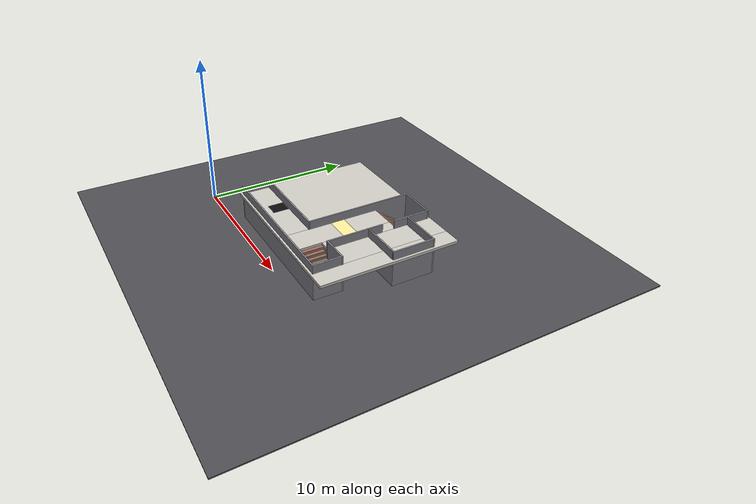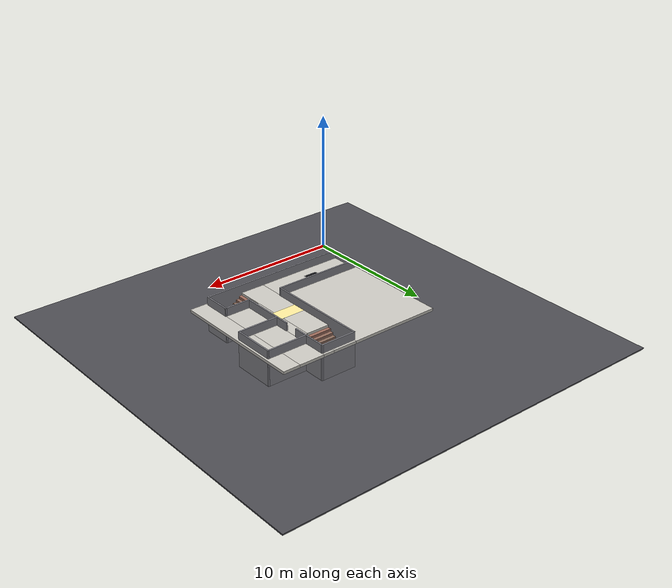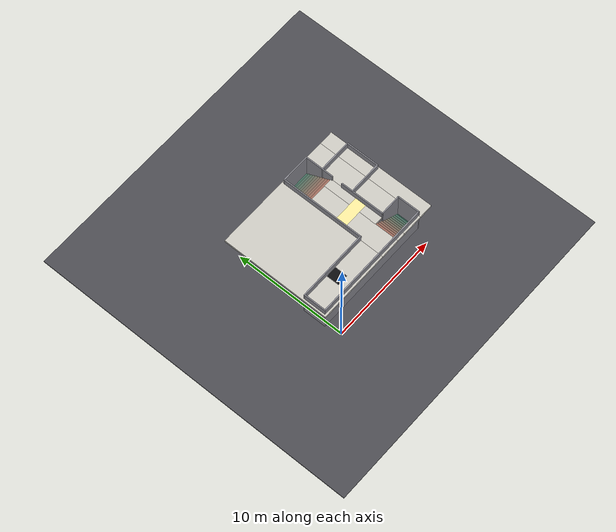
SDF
<?xml version="1.0"?>
<sdf version="1.6">
<world name="city_hall">
  <physics type="ode"><max_step_size>0.002</max_step_size><real_time_update_rate>500</real_time_update_rate>
    <real_time_factor>1</real_time_factor></physics>
  <scene><ambient>0.45 0.45 0.45 1</ambient><background>0.75 0.78 0.82 1</background><shadows>false</shadows></scene>
  <gui><camera name="user_camera"><pose>5.75 0.8 13.5 0 1.12 1.5708</pose></camera></gui>
  <light name="sun" type="directional"><cast_shadows>false</cast_shadows><pose>0 0 20 0 0 0</pose>
    <diffuse>0.85 0.85 0.85 1</diffuse><specular>0.1 0.1 0.1 1</specular><direction>-0.3 0.2 -1</direction></light>
  <model name="lower_floor"><static>true</static><pose>5.75 6.9 -2.05 0 0 0</pose>
    <link name="l"><collision name="c"><geometry><box><size>30 30 0.1</size></box></geometry></collision>
      <visual name="v"><geometry><box><size>30 30 0.1</size></box></geometry>
        <material><ambient>0.3 0.3 0.32 1</ambient><diffuse>0.3 0.3 0.32 1</diffuse></material></visual></link></model>
  <model name="city_hall"><static>true</static><link name="wall0"><pose>0.5000 3.0000 -0.7000 0 0 -1.57080</pose><collision name="c"><geometry><box><size>2.1000 0.1000 2.6000</size></box></geometry></collision><visual name="v"><geometry><box><size>2.1000 0.1000 2.6000</size></box></geometry><material><ambient>0.55 0.55 0.58 1</ambient><diffuse>0.55 0.55 0.58 1</diffuse><specular>0.05 0.05 0.05 1</specular></material></visual></link><link name="wall1"><pose>6.0000 2.0000 -0.7000 0 0 0.00000</pose><collision name="c"><geometry><box><size>11.1000 0.1000 2.6000</size></box></geometry></collision><visual name="v"><geometry><box><size>11.1000 0.1000 2.6000</size></box></geometry><material><ambient>0.55 0.55 0.58 1</ambient><diffuse>0.55 0.55 0.58 1</diffuse><specular>0.05 0.05 0.05 1</specular></material></visual></link><link name="wall2"><pose>11.5000 3.0000 -0.7000 0 0 1.57080</pose><collision name="c"><geometry><box><size>2.1000 0.1000 2.6000</size></box></geometry></collision><visual name="v"><geometry><box><size>2.1000 0.1000 2.6000</size></box></geometry><material><ambient>0.55 0.55 0.58 1</ambient><diffuse>0.55 0.55 0.58 1</diffuse><specular>0.05 0.05 0.05 1</specular></material></visual></link><link name="wall3"><pose>10.5500 4.0000 -0.7000 0 0 3.14159</pose><collision name="c"><geometry><box><size>2.0000 0.1000 2.6000</size></box></geometry></collision><visual name="v"><geometry><box><size>2.0000 0.1000 2.6000</size></box></geometry><material><ambient>0.55 0.55 0.58 1</ambient><diffuse>0.55 0.55 0.58 1</diffuse><specular>0.05 0.05 0.05 1</specular></material></visual></link><link name="wall4"><pose>9.6000 6.0000 -0.7000 0 0 1.57080</pose><collision name="c"><geometry><box><size>4.1000 0.1000 2.6000</size></box></geometry></collision><visual name="v"><geometry><box><size>4.1000 0.1000 2.6000</size></box></geometry><material><ambient>0.55 0.55 0.58 1</ambient><diffuse>0.55 0.55 0.58 1</diffuse><specular>0.05 0.05 0.05 1</specular></material></visual></link><link name="wall5"><pose>9.6000 10.3000 -0.7000 0 0 1.57080</pose><collision name="c"><geometry><box><size>2.7000 0.1000 2.6000</size></box></geometry></collision><visual name="v"><geometry><box><size>2.7000 0.1000 2.6000</size></box></geometry><material><ambient>0.55 0.55 0.58 1</ambient><diffuse>0.55 0.55 0.58 1</diffuse><specular>0.05 0.05 0.05 1</specular></material></visual></link><link name="wall6"><pose>8.3000 11.6000 -0.7000 0 0 3.14159</pose><collision name="c"><geometry><box><size>2.7000 0.1000 2.6000</size></box></geometry></collision><visual name="v"><geometry><box><size>2.7000 0.1000 2.6000</size></box></geometry><material><ambient>0.55 0.55 0.58 1</ambient><diffuse>0.55 0.55 0.58 1</diffuse><specular>0.05 0.05 0.05 1</specular></material></visual></link><link name="wall7"><pose>7.0000 7.8000 -0.7000 0 0 -1.57080</pose><collision name="c"><geometry><box><size>7.7000 0.1000 2.6000</size></box></geometry></collision><visual name="v"><geometry><box><size>7.7000 0.1000 2.6000</size></box></geometry><material><ambient>0.55 0.55 0.58 1</ambient><diffuse>0.55 0.55 0.58 1</diffuse><specular>0.05 0.05 0.05 1</specular></material></visual></link><link name="wall8"><pose>3.7500 4.0000 -0.7000 0 0 3.14159</pose><collision name="c"><geometry><box><size>6.6000 0.1000 2.6000</size></box></geometry></collision><visual name="v"><geometry><box><size>6.6000 0.1000 2.6000</size></box></geometry><material><ambient>0.55 0.55 0.58 1</ambient><diffuse>0.55 0.55 0.58 1</diffuse><specular>0.05 0.05 0.05 1</specular></material></visual></link><link name="wall9"><pose>11.1000 7.0000 -0.7000 0 0 0.00000</pose><collision name="c"><geometry><box><size>3.1000 0.1000 2.6000</size></box></geometry></collision><visual name="v"><geometry><box><size>3.1000 0.1000 2.6000</size></box></geometry><material><ambient>0.55 0.55 0.58 1</ambient><diffuse>0.55 0.55 0.58 1</diffuse><specular>0.05 0.05 0.05 1</specular></material></visual></link><link name="wall10"><pose>12.6000 8.5000 -0.7000 0 0 1.57080</pose><collision name="c"><geometry><box><size>3.1000 0.1000 2.6000</size></box></geometry></collision><visual name="v"><geometry><box><size>3.1000 0.1000 2.6000</size></box></geometry><material><ambient>0.55 0.55 0.58 1</ambient><diffuse>0.55 0.55 0.58 1</diffuse><specular>0.05 0.05 0.05 1</specular></material></visual></link><link name="wall11"><pose>11.1000 10.0000 -0.7000 0 0 3.14159</pose><collision name="c"><geometry><box><size>3.1000 0.1000 2.6000</size></box></geometry></collision><visual name="v"><geometry><box><size>3.1000 0.1000 2.6000</size></box></geometry><material><ambient>0.55 0.55 0.58 1</ambient><diffuse>0.55 0.55 0.58 1</diffuse><specular>0.05 0.05 0.05 1</specular></material></visual></link><link name="slab0"><pose>3.6500 6.8000 -0.1000 0 0 0.00000</pose><collision name="c"><geometry><box><size>6.7000 10.0000 0.2000</size></box></geometry></collision><visual name="v"><geometry><box><size>6.7000 10.0000 0.2000</size></box></geometry><material><ambient>0.8 0.79 0.76 1</ambient><diffuse>0.8 0.79 0.76 1</diffuse><specular>0.05 0.05 0.05 1</specular></material></visual></link><link name="slab1"><pose>7.8900 5.4500 -0.1000 0 0 0.00000</pose><collision name="c"><geometry><box><size>1.8200 7.3000 0.2000</size></box></geometry></collision><visual name="v"><geometry><box><size>1.8200 7.3000 0.2000</size></box></geometry><material><ambient>0.8 0.79 0.76 1</ambient><diffuse>0.8 0.79 0.76 1</diffuse><specular>0.05 0.05 0.05 1</specular></material></visual></link><link name="slab2"><pose>7.9000 11.7000 -0.1000 0 0 0.00000</pose><collision name="c"><geometry><box><size>1.8400 0.2000 0.2000</size></box></geometry></collision><visual name="v"><geometry><box><size>1.8400 0.2000 0.2000</size></box></geometry><material><ambient>0.8 0.79 0.76 1</ambient><diffuse>0.8 0.79 0.76 1</diffuse><specular>0.05 0.05 0.05 1</specular></material></visual></link><link name="slab3"><pose>9.2000 1.9000 -0.1000 0 0 0.00000</pose><collision name="c"><geometry><box><size>0.8400 0.2000 0.2000</size></box></geometry></collision><visual name="v"><geometry><box><size>0.8400 0.2000 0.2000</size></box></geometry><material><ambient>0.8 0.79 0.76 1</ambient><diffuse>0.8 0.79 0.76 1</diffuse><specular>0.05 0.05 0.05 1</specular></material></visual></link><link name="slab4"><pose>9.2000 6.5500 -0.1000 0 0 0.00000</pose><collision name="c"><geometry><box><size>0.8400 5.1000 0.2000</size></box></geometry></collision><visual name="v"><geometry><box><size>0.8400 5.1000 0.2000</size></box></geometry><material><ambient>0.8 0.79 0.76 1</ambient><diffuse>0.8 0.79 0.76 1</diffuse><specular>0.05 0.05 0.05 1</specular></material></visual></link><link name="slab5"><pose>9.2000 11.7000 -0.1000 0 0 0.00000</pose><collision name="c"><geometry><box><size>0.8400 0.2000 0.2000</size></box></geometry></collision><visual name="v"><geometry><box><size>0.8400 0.2000 0.2000</size></box></geometry><material><ambient>0.8 0.79 0.76 1</ambient><diffuse>0.8 0.79 0.76 1</diffuse><specular>0.05 0.05 0.05 1</specular></material></visual></link><link name="slab6"><pose>10.5500 1.9000 -0.1000 0 0 0.00000</pose><collision name="c"><geometry><box><size>1.9400 0.2000 0.2000</size></box></geometry></collision><visual name="v"><geometry><box><size>1.9400 0.2000 0.2000</size></box></geometry><material><ambient>0.8 0.79 0.76 1</ambient><diffuse>0.8 0.79 0.76 1</diffuse><specular>0.05 0.05 0.05 1</specular></material></visual></link><link name="slab7"><pose>10.5600 7.9000 -0.1000 0 0 0.00000</pose><collision name="c"><geometry><box><size>1.9200 7.8000 0.2000</size></box></geometry></collision><visual name="v"><geometry><box><size>1.9200 7.8000 0.2000</size></box></geometry><material><ambient>0.8 0.79 0.76 1</ambient><diffuse>0.8 0.79 0.76 1</diffuse><specular>0.05 0.05 0.05 1</specular></material></visual></link><link name="slab8"><pose>12.1500 6.8000 -0.1000 0 0 0.00000</pose><collision name="c"><geometry><box><size>1.3000 10.0000 0.2000</size></box></geometry></collision><visual name="v"><geometry><box><size>1.3000 10.0000 0.2000</size></box></geometry><material><ambient>0.8 0.79 0.76 1</ambient><diffuse>0.8 0.79 0.76 1</diffuse><specular>0.05 0.05 0.05 1</specular></material></visual></link><link name="stairA0"><pose>8.9250 3.0000 -1.0900 0 0 0.00000</pose><collision name="c"><geometry><box><size>0.2500 2.0000 1.8200</size></box></geometry></collision><visual name="v"><geometry><box><size>0.2500 2.0000 1.8200</size></box></geometry><material><ambient>0.62 0.42 0.36 1</ambient><diffuse>0.62 0.42 0.36 1</diffuse><specular>0.05 0.05 0.05 1</specular></material></visual></link><link name="stairA1"><pose>9.1750 3.0000 -1.1800 0 0 0.00000</pose><collision name="c"><geometry><box><size>0.2500 2.0000 1.6400</size></box></geometry></collision><visual name="v"><geometry><box><size>0.2500 2.0000 1.6400</size></box></geometry><material><ambient>0.58 0.42 0.36 1</ambient><diffuse>0.58 0.42 0.36 1</diffuse><specular>0.05 0.05 0.05 1</specular></material></visual></link><link name="stairA2"><pose>9.4250 3.0000 -1.2700 0 0 0.00000</pose><collision name="c"><geometry><box><size>0.2500 2.0000 1.4600</size></box></geometry></collision><visual name="v"><geometry><box><size>0.2500 2.0000 1.4600</size></box></geometry><material><ambient>0.54 0.42 0.36 1</ambient><diffuse>0.54 0.42 0.36 1</diffuse><specular>0.05 0.05 0.05 1</specular></material></visual></link><link name="stairA3"><pose>9.6750 3.0000 -1.3600 0 0 0.00000</pose><collision name="c"><geometry><box><size>0.2500 2.0000 1.2800</size></box></geometry></collision><visual name="v"><geometry><box><size>0.2500 2.0000 1.2800</size></box></geometry><material><ambient>0.5 0.42 0.36 1</ambient><diffuse>0.5 0.42 0.36 1</diffuse><specular>0.05 0.05 0.05 1</specular></material></visual></link><link name="stairA4"><pose>9.9250 3.0000 -1.4500 0 0 0.00000</pose><collision name="c"><geometry><box><size>0.2500 2.0000 1.1000</size></box></geometry></collision><visual name="v"><geometry><box><size>0.2500 2.0000 1.1000</size></box></geometry><material><ambient>0.45999999999999996 0.42 0.36 1</ambient><diffuse>0.45999999999999996 0.42 0.36 1</diffuse><specular>0.05 0.05 0.05 1</specular></material></visual></link><link name="stairA5"><pose>10.1750 3.0000 -1.5400 0 0 0.00000</pose><collision name="c"><geometry><box><size>0.2500 2.0000 0.9200</size></box></geometry></collision><visual name="v"><geometry><box><size>0.2500 2.0000 0.9200</size></box></geometry><material><ambient>0.42 0.42 0.36 1</ambient><diffuse>0.42 0.42 0.36 1</diffuse><specular>0.05 0.05 0.05 1</specular></material></visual></link><link name="stairA6"><pose>10.4250 3.0000 -1.6300 0 0 0.00000</pose><collision name="c"><geometry><box><size>0.2500 2.0000 0.7400</size></box></geometry></collision><visual name="v"><geometry><box><size>0.2500 2.0000 0.7400</size></box></geometry><material><ambient>0.38 0.42 0.36 1</ambient><diffuse>0.38 0.42 0.36 1</diffuse><specular>0.05 0.05 0.05 1</specular></material></visual></link><link name="stairA7"><pose>10.6750 3.0000 -1.7200 0 0 0.00000</pose><collision name="c"><geometry><box><size>0.2500 2.0000 0.5600</size></box></geometry></collision><visual name="v"><geometry><box><size>0.2500 2.0000 0.5600</size></box></geometry><material><ambient>0.33999999999999997 0.42 0.36 1</ambient><diffuse>0.33999999999999997 0.42 0.36 1</diffuse><specular>0.05 0.05 0.05 1</specular></material></visual></link><link name="stairA8"><pose>10.9250 3.0000 -1.8100 0 0 0.00000</pose><collision name="c"><geometry><box><size>0.2500 2.0000 0.3800</size></box></geometry></collision><visual name="v"><geometry><box><size>0.2500 2.0000 0.3800</size></box></geometry><material><ambient>0.3 0.42 0.36 1</ambient><diffuse>0.3 0.42 0.36 1</diffuse><specular>0.05 0.05 0.05 1</specular></material></visual></link><link name="stairA9"><pose>11.1750 3.0000 -1.9000 0 0 0.00000</pose><collision name="c"><geometry><box><size>0.2500 2.0000 0.2000</size></box></geometry></collision><visual name="v"><geometry><box><size>0.2500 2.0000 0.2000</size></box></geometry><material><ambient>0.26 0.42 0.36 1</ambient><diffuse>0.26 0.42 0.36 1</diffuse><specular>0.05 0.05 0.05 1</specular></material></visual></link><link name="stairA10"><pose>11.4000 3.0000 -1.9900 0 0 0.00000</pose><collision name="c"><geometry><box><size>0.2000 2.0000 0.0200</size></box></geometry></collision><visual name="v"><geometry><box><size>0.2000 2.0000 0.0200</size></box></geometry><material><ambient>0.21999999999999997 0.42 0.36 1</ambient><diffuse>0.21999999999999997 0.42 0.36 1</diffuse><specular>0.05 0.05 0.05 1</specular></material></visual></link><link name="stairB0"><pose>8.3000 9.2250 -1.0900 0 0 0.00000</pose><collision name="c"><geometry><box><size>2.6000 0.2500 1.8200</size></box></geometry></collision><visual name="v"><geometry><box><size>2.6000 0.2500 1.8200</size></box></geometry><material><ambient>0.62 0.42 0.36 1</ambient><diffuse>0.62 0.42 0.36 1</diffuse><specular>0.05 0.05 0.05 1</specular></material></visual></link><link name="stairB1"><pose>8.3000 9.4750 -1.1800 0 0 0.00000</pose><collision name="c"><geometry><box><size>2.6000 0.2500 1.6400</size></box></geometry></collision><visual name="v"><geometry><box><size>2.6000 0.2500 1.6400</size></box></geometry><material><ambient>0.58 0.42 0.36 1</ambient><diffuse>0.58 0.42 0.36 1</diffuse><specular>0.05 0.05 0.05 1</specular></material></visual></link><link name="stairB2"><pose>8.3000 9.7250 -1.2700 0 0 0.00000</pose><collision name="c"><geometry><box><size>2.6000 0.2500 1.4600</size></box></geometry></collision><visual name="v"><geometry><box><size>2.6000 0.2500 1.4600</size></box></geometry><material><ambient>0.54 0.42 0.36 1</ambient><diffuse>0.54 0.42 0.36 1</diffuse><specular>0.05 0.05 0.05 1</specular></material></visual></link><link name="stairB3"><pose>8.3000 9.9750 -1.3600 0 0 0.00000</pose><collision name="c"><geometry><box><size>2.6000 0.2500 1.2800</size></box></geometry></collision><visual name="v"><geometry><box><size>2.6000 0.2500 1.2800</size></box></geometry><material><ambient>0.5 0.42 0.36 1</ambient><diffuse>0.5 0.42 0.36 1</diffuse><specular>0.05 0.05 0.05 1</specular></material></visual></link><link name="stairB4"><pose>8.3000 10.2250 -1.4500 0 0 0.00000</pose><collision name="c"><geometry><box><size>2.6000 0.2500 1.1000</size></box></geometry></collision><visual name="v"><geometry><box><size>2.6000 0.2500 1.1000</size></box></geometry><material><ambient>0.45999999999999996 0.42 0.36 1</ambient><diffuse>0.45999999999999996 0.42 0.36 1</diffuse><specular>0.05 0.05 0.05 1</specular></material></visual></link><link name="stairB5"><pose>8.3000 10.4750 -1.5400 0 0 0.00000</pose><collision name="c"><geometry><box><size>2.6000 0.2500 0.9200</size></box></geometry></collision><visual name="v"><geometry><box><size>2.6000 0.2500 0.9200</size></box></geometry><material><ambient>0.42 0.42 0.36 1</ambient><diffuse>0.42 0.42 0.36 1</diffuse><specular>0.05 0.05 0.05 1</specular></material></visual></link><link name="stairB6"><pose>8.3000 10.7250 -1.6300 0 0 0.00000</pose><collision name="c"><geometry><box><size>2.6000 0.2500 0.7400</size></box></geometry></collision><visual name="v"><geometry><box><size>2.6000 0.2500 0.7400</size></box></geometry><material><ambient>0.38 0.42 0.36 1</ambient><diffuse>0.38 0.42 0.36 1</diffuse><specular>0.05 0.05 0.05 1</specular></material></visual></link><link name="stairB7"><pose>8.3000 10.9750 -1.7200 0 0 0.00000</pose><collision name="c"><geometry><box><size>2.6000 0.2500 0.5600</size></box></geometry></collision><visual name="v"><geometry><box><size>2.6000 0.2500 0.5600</size></box></geometry><material><ambient>0.33999999999999997 0.42 0.36 1</ambient><diffuse>0.33999999999999997 0.42 0.36 1</diffuse><specular>0.05 0.05 0.05 1</specular></material></visual></link><link name="stairB8"><pose>8.3000 11.2250 -1.8100 0 0 0.00000</pose><collision name="c"><geometry><box><size>2.6000 0.2500 0.3800</size></box></geometry></collision><visual name="v"><geometry><box><size>2.6000 0.2500 0.3800</size></box></geometry><material><ambient>0.3 0.42 0.36 1</ambient><diffuse>0.3 0.42 0.36 1</diffuse><specular>0.05 0.05 0.05 1</specular></material></visual></link><link name="stairB9"><pose>8.3000 11.4750 -1.9000 0 0 0.00000</pose><collision name="c"><geometry><box><size>2.6000 0.2500 0.2000</size></box></geometry></collision><visual name="v"><geometry><box><size>2.6000 0.2500 0.2000</size></box></geometry><material><ambient>0.26 0.42 0.36 1</ambient><diffuse>0.26 0.42 0.36 1</diffuse><specular>0.05 0.05 0.05 1</specular></material></visual></link><link name="dark_mat"><pose>3.5000 3.4000 0.0005 0 0 0.00000</pose><visual name="v"><geometry><box><size>1.0000 1.2000 0.0010</size></box></geometry><material><ambient>0.05 0.05 0.06 1</ambient><diffuse>0.05 0.05 0.06 1</diffuse><specular>0.05 0.05 0.05 1</specular></material></visual></link><link name="sun_patch"><pose>8.3000 6.1000 0.0005 0 0 0.00000</pose><visual name="v"><geometry><box><size>2.6000 1.0000 0.0010</size></box></geometry><material><ambient>1.0 0.93 0.62 1</ambient><diffuse>1.0 0.93 0.62 1</diffuse><specular>0.05 0.05 0.05 1</specular></material></visual></link></model>
  <model name="overhead_cam"><static>true</static>
  <link name="link"><pose>6.55 6.8 24.0 0 1.570796 1.570796</pose>
    <sensor name="overhead" type="camera"><update_rate>4</update_rate><always_on>true</always_on>
      <camera><horizontal_fov>0.5212047834946819</horizontal_fov>
        <image><width>720</width><height>600</height><format>R8G8B8</format></image>
        <clip><near>1.0</near><far>40</far></clip></camera>
      <plugin name="overhead_cam" filename="libgazebo_ros_camera.so">
        <ros><namespace>/overhead</namespace></ros><camera_name>overhead</camera_name><frame_name>overhead</frame_name>
      </plugin>
    </sensor>
  </link></model>
  <plugin name="gazebo_ros_state" filename="libgazebo_ros_state.so">
    <ros><namespace>/</namespace></ros><update_rate>20.0</update_rate>
  </plugin>
</world>
</sdf>
